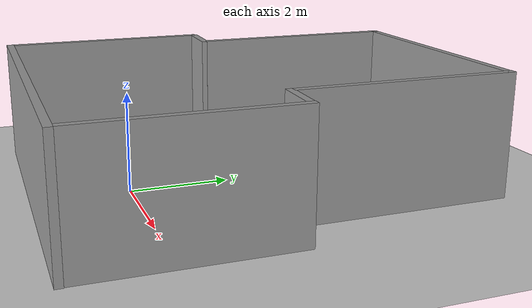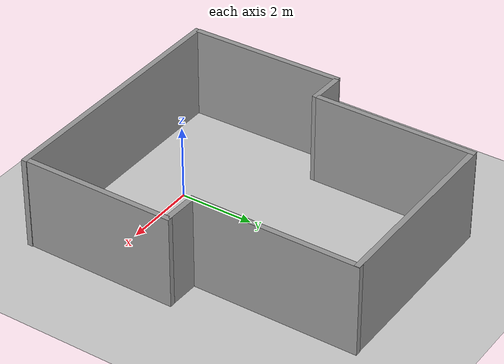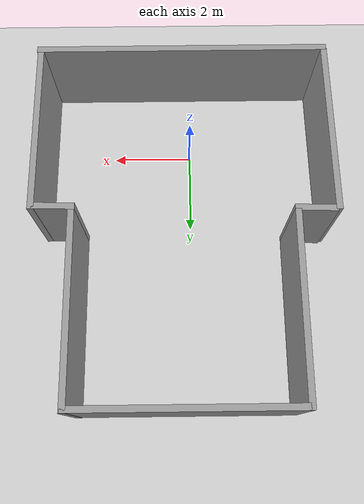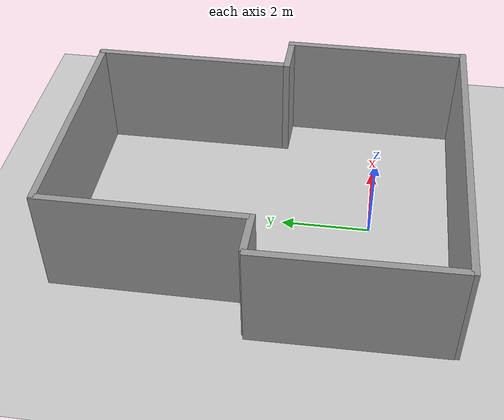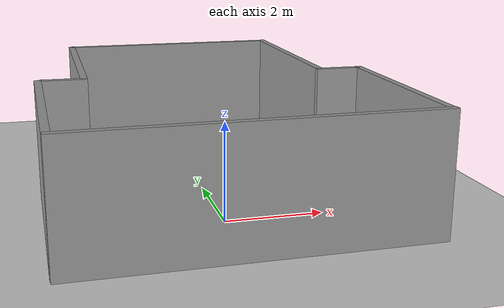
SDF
<sdf version="1.7">
 <world name="default">
  <light name="sun" type="directional">
   <pose>0 0 10 0 -0 0</pose>
   <diffuse>0.8 0.8 0.8 1</diffuse>
   <specular>0.2 0.2 0.2 1</specular>
   <attenuation>
    <range>1000</range>
    <constant>0.9</constant>
    <linear>0.01</linear>
    <quadratic>0.001</quadratic>
   </attenuation>
   <direction>-0.5 0.1 -0.9</direction>
   <spot><inner_angle>0</inner_angle><outer_angle>0</outer_angle><falloff>0</falloff></spot>
  </light>
  <model name="ground_plane">
   <static>1</static>
   <link name="link">
    <collision name="collision">
     <geometry><plane><normal>0 0 1</normal><size>100 100</size></plane></geometry>
     <surface>
      <contact><collide_bitmask>65535</collide_bitmask></contact>
      <friction><ode><mu>100</mu><mu2>50</mu2></ode></friction>
     </surface>
    </collision>
    <visual name="visual">
     <cast_shadows>0</cast_shadows>
     <geometry><plane><normal>0 0 1</normal><size>100 100</size></plane></geometry>
     <material>
      <script><uri>file://media/materials/scripts/gazebo.material</uri><name>Gazebo/Grey</name></script>
     </material>
    </visual>
   </link>
  </model>
  <gravity>0 0 -9.8</gravity>
  <magnetic_field>6e-06 2.3e-05 -4.2e-05</magnetic_field>
  <atmosphere type="adiabatic"/>
  <physics type="ode">
   <max_step_size>0.001</max_step_size>
   <real_time_factor>1</real_time_factor>
   <real_time_update_rate>1000</real_time_update_rate>
  </physics>
  <scene><ambient>0.4 0.4 0.4 1</ambient><background>0.7 0.7 0.7 1</background><shadows>1</shadows></scene>
  <spherical_coordinates>
   <surface_model>EARTH_WGS84</surface_model>
   <latitude_deg>0</latitude_deg>
   <longitude_deg>0</longitude_deg>
   <elevation>0</elevation>
   <heading_deg>0</heading_deg>
  </spherical_coordinates>
  <model name="funnel_shaped_room_0">
   <link name="Wall_1">
    <pose>0.091563 -2.92893 0 0 -0 0</pose>
    <inertial>
     <inertia><ixx>0</ixx><ixy>0</ixy><ixz>0</ixz><iyy>0</iyy><iyz>0</iyz><izz>0</izz></inertia>
     <mass>0</mass>
    </inertial>
    <visual name="Wall_1_Visual">
     <pose>0 0 1.25 0 -0 0</pose>
     <geometry><box><size>7.11378 0.15 2.5</size></box></geometry>
     <material>
      <script><uri>file://media/materials/scripts/gazebo.material</uri><name>Gazebo/Grey</name></script>
      <ambient>1 1 1 1</ambient>
      <shader type="pixel"/>
     </material>
     <meta><layer>0</layer></meta>
    </visual>
    <collision name="Wall_1_Collision">
     <pose>0 0 1.25 0 -0 0</pose>
     <geometry><box><size>7.11378 0.15 2.5</size></box></geometry>
     <surface>
      <friction>
       <ode><mu>1</mu><mu2>1</mu2><fdir1>0 0 0</fdir1><slip1>0</slip1><slip2>0</slip2></ode>
       <torsional>
        <coefficient>1</coefficient>
        <patch_radius>0</patch_radius>
        <surface_radius>0</surface_radius>
        <use_patch_radius>1</use_patch_radius>
        <ode><slip>0</slip></ode>
       </torsional>
      </friction>
      <bounce><restitution_coefficient>0</restitution_coefficient><threshold>1e+06</threshold></bounce>
      <contact>
       <collide_without_contact>0</collide_without_contact>
       <collide_without_contact_bitmask>1</collide_without_contact_bitmask>
       <collide_bitmask>1</collide_bitmask>
       <ode>
        <soft_cfm>0</soft_cfm>
        <soft_erp>0.2</soft_erp>
        <kp>1e+13</kp>
        <kd>1</kd>
        <max_vel>0.01</max_vel>
        <min_depth>0</min_depth>
       </ode>
       <bullet>
        <split_impulse>1</split_impulse>
        <split_impulse_penetration_threshold>-0.01</split_impulse_penetration_threshold>
        <soft_cfm>0</soft_cfm>
        <soft_erp>0.2</soft_erp>
        <kp>1e+13</kp>
        <kd>1</kd>
       </bullet>
      </contact>
     </surface>
    </collision>
   </link>
   <link name="Wall_3">
    <pose>2.64577 3.48532 0 0 -0 1.5708</pose>
    <inertial>
     <inertia><ixx>0</ixx><ixy>0</ixy><ixz>0</ixz><iyy>0</iyy><iyz>0</iyz><izz>0</izz></inertia>
     <mass>0</mass>
    </inertial>
    <visual name="Wall_3_Visual">
     <pose>0 0 1.25 0 -0 0</pose>
     <geometry><box><size>4.48059 0.15 2.5</size></box></geometry>
     <material>
      <script><uri>file://media/materials/scripts/gazebo.material</uri><name>Gazebo/Grey</name></script>
      <ambient>1 1 1 1</ambient>
      <shader type="pixel"/>
     </material>
     <meta><layer>0</layer></meta>
    </visual>
    <collision name="Wall_3_Collision">
     <pose>0 0 1.25 0 -0 0</pose>
     <geometry><box><size>4.48059 0.15 2.5</size></box></geometry>
     <surface>
      <friction>
       <ode><mu>1</mu><mu2>1</mu2><fdir1>0 0 0</fdir1><slip1>0</slip1><slip2>0</slip2></ode>
       <torsional>
        <coefficient>1</coefficient>
        <patch_radius>0</patch_radius>
        <surface_radius>0</surface_radius>
        <use_patch_radius>1</use_patch_radius>
        <ode><slip>0</slip></ode>
       </torsional>
      </friction>
      <bounce><restitution_coefficient>0</restitution_coefficient><threshold>1e+06</threshold></bounce>
      <contact>
       <collide_without_contact>0</collide_without_contact>
       <collide_without_contact_bitmask>1</collide_without_contact_bitmask>
       <collide_bitmask>1</collide_bitmask>
       <ode>
        <soft_cfm>0</soft_cfm>
        <soft_erp>0.2</soft_erp>
        <kp>1e+13</kp>
        <kd>1</kd>
        <max_vel>0.01</max_vel>
        <min_depth>0</min_depth>
       </ode>
       <bullet>
        <split_impulse>1</split_impulse>
        <split_impulse_penetration_threshold>-0.01</split_impulse_penetration_threshold>
        <soft_cfm>0</soft_cfm>
        <soft_erp>0.2</soft_erp>
        <kp>1e+13</kp>
        <kd>1</kd>
       </bullet>
      </contact>
     </surface>
    </collision>
   </link>
   <link name="Wall_3_clone">
    <pose>3.56406 -0.806127 0 0 -0 1.56617</pose>
    <inertial>
     <inertia><ixx>0</ixx><ixy>0</ixy><ixz>0</ixz><iyy>0</iyy><iyz>0</iyz><izz>0</izz></inertia>
     <mass>0</mass>
    </inertial>
    <visual name="Wall_3_Visual">
     <pose>0 0 1.25 0 -0 0</pose>
     <geometry><box><size>4.11554 0.15 2.5</size></box></geometry>
     <material>
      <script><uri>file://media/materials/scripts/gazebo.material</uri><name>Gazebo/Grey</name></script>
      <ambient>1 1 1 1</ambient>
      <shader type="pixel"/>
     </material>
     <meta><layer>0</layer></meta>
    </visual>
    <collision name="Wall_3_Collision">
     <pose>0 0 1.25 0 -0 0</pose>
     <geometry><box><size>4.11554 0.15 2.5</size></box></geometry>
     <surface>
      <friction>
       <ode><mu>1</mu><mu2>1</mu2><fdir1>0 0 0</fdir1><slip1>0</slip1><slip2>0</slip2></ode>
       <torsional>
        <coefficient>1</coefficient>
        <patch_radius>0</patch_radius>
        <surface_radius>0</surface_radius>
        <use_patch_radius>1</use_patch_radius>
        <ode><slip>0</slip></ode>
       </torsional>
      </friction>
      <bounce><restitution_coefficient>0</restitution_coefficient><threshold>1e+06</threshold></bounce>
      <contact>
       <collide_without_contact>0</collide_without_contact>
       <collide_without_contact_bitmask>1</collide_without_contact_bitmask>
       <collide_bitmask>1</collide_bitmask>
       <ode>
        <soft_cfm>0</soft_cfm>
        <soft_erp>0.2</soft_erp>
        <kp>1e+13</kp>
        <kd>1</kd>
        <max_vel>0.01</max_vel>
        <min_depth>0</min_depth>
       </ode>
       <bullet>
        <split_impulse>1</split_impulse>
        <split_impulse_penetration_threshold>-0.01</split_impulse_penetration_threshold>
        <soft_cfm>0</soft_cfm>
        <soft_erp>0.2</soft_erp>
        <kp>1e+13</kp>
        <kd>1</kd>
       </bullet>
      </contact>
     </surface>
    </collision>
   </link>
   <link name="Wall_6">
    <pose>-2.51592 3.51045 0 0 -0 1.5708</pose>
    <inertial>
     <inertia><ixx>0</ixx><ixy>0</ixy><ixz>0</ixz><iyy>0</iyy><iyz>0</iyz><izz>0</izz></inertia>
     <mass>0</mass>
    </inertial>
    <visual name="Wall_6_Visual">
     <pose>0 0 1.25 0 -0 0</pose>
     <geometry><box><size>4.40079 0.15 2.5</size></box></geometry>
     <material>
      <script><uri>file://media/materials/scripts/gazebo.material</uri><name>Gazebo/Grey</name></script>
      <ambient>1 1 1 1</ambient>
      <shader type="pixel"/>
     </material>
     <meta><layer>0</layer></meta>
    </visual>
    <collision name="Wall_6_Collision">
     <pose>0 0 1.25 0 -0 0</pose>
     <geometry><box><size>4.40079 0.15 2.5</size></box></geometry>
     <surface>
      <friction>
       <ode><mu>1</mu><mu2>1</mu2><fdir1>0 0 0</fdir1><slip1>0</slip1><slip2>0</slip2></ode>
       <torsional>
        <coefficient>1</coefficient>
        <patch_radius>0</patch_radius>
        <surface_radius>0</surface_radius>
        <use_patch_radius>1</use_patch_radius>
        <ode><slip>0</slip></ode>
       </torsional>
      </friction>
      <bounce><restitution_coefficient>0</restitution_coefficient><threshold>1e+06</threshold></bounce>
      <contact>
       <collide_without_contact>0</collide_without_contact>
       <collide_without_contact_bitmask>1</collide_without_contact_bitmask>
       <collide_bitmask>1</collide_bitmask>
       <ode>
        <soft_cfm>0</soft_cfm>
        <soft_erp>0.2</soft_erp>
        <kp>1e+13</kp>
        <kd>1</kd>
        <max_vel>0.01</max_vel>
        <min_depth>0</min_depth>
       </ode>
       <bullet>
        <split_impulse>1</split_impulse>
        <split_impulse_penetration_threshold>-0.01</split_impulse_penetration_threshold>
        <soft_cfm>0</soft_cfm>
        <soft_erp>0.2</soft_erp>
        <kp>1e+13</kp>
        <kd>1</kd>
       </bullet>
      </contact>
     </surface>
    </collision>
   </link>
   <link name="Wall_6_clone">
    <pose>-3.42841 -0.784437 0 0 -0 1.58334</pose>
    <inertial>
     <inertia><ixx>0</ixx><ixy>0</ixy><ixz>0</ixz><iyy>0</iyy><iyz>0</iyz><izz>0</izz></inertia>
     <mass>0</mass>
    </inertial>
    <visual name="Wall_6_Visual">
     <pose>0 0 1.25 0 -0 0</pose>
     <geometry><box><size>4.23243 0.15 2.5</size></box></geometry>
     <material>
      <script><uri>file://media/materials/scripts/gazebo.material</uri><name>Gazebo/Grey</name></script>
      <ambient>1 1 1 1</ambient>
      <shader type="pixel"/>
     </material>
     <meta><layer>0</layer></meta>
    </visual>
    <collision name="Wall_6_Collision">
     <pose>0 0 1.25 0 -0 0</pose>
     <geometry><box><size>4.23243 0.15 2.5</size></box></geometry>
     <surface>
      <friction>
       <ode><mu>1</mu><mu2>1</mu2><fdir1>0 0 0</fdir1><slip1>0</slip1><slip2>0</slip2></ode>
       <torsional>
        <coefficient>1</coefficient>
        <patch_radius>0</patch_radius>
        <surface_radius>0</surface_radius>
        <use_patch_radius>1</use_patch_radius>
        <ode><slip>0</slip></ode>
       </torsional>
      </friction>
      <bounce><restitution_coefficient>0</restitution_coefficient><threshold>1e+06</threshold></bounce>
      <contact>
       <collide_without_contact>0</collide_without_contact>
       <collide_without_contact_bitmask>1</collide_without_contact_bitmask>
       <collide_bitmask>1</collide_bitmask>
       <ode>
        <soft_cfm>0</soft_cfm>
        <soft_erp>0.2</soft_erp>
        <kp>1e+13</kp>
        <kd>1</kd>
        <max_vel>0.01</max_vel>
        <min_depth>0</min_depth>
       </ode>
       <bullet>
        <split_impulse>1</split_impulse>
        <split_impulse_penetration_threshold>-0.01</split_impulse_penetration_threshold>
        <soft_cfm>0</soft_cfm>
        <soft_erp>0.2</soft_erp>
        <kp>1e+13</kp>
        <kd>1</kd>
       </bullet>
      </contact>
     </surface>
    </collision>
   </link>
   <link name="Wall_6_clone_0">
    <pose>-2.93735 1.28494 0 0 0 -0.025129</pose>
    <inertial>
     <inertia><ixx>0</ixx><ixy>0</ixy><ixz>0</ixz><iyy>0</iyy><iyz>0</iyz><izz>0</izz></inertia>
     <mass>0</mass>
    </inertial>
    <visual name="Wall_6_Visual">
     <pose>0 0 1.25 0 -0 0</pose>
     <geometry><box><size>0.989262 0.15 2.5</size></box></geometry>
     <material>
      <script><uri>file://media/materials/scripts/gazebo.material</uri><name>Gazebo/Grey</name></script>
      <ambient>1 1 1 1</ambient>
      <shader type="pixel"/>
     </material>
     <meta><layer>0</layer></meta>
    </visual>
    <collision name="Wall_6_Collision">
     <pose>0 0 1.25 0 -0 0</pose>
     <geometry><box><size>0.989262 0.15 2.5</size></box></geometry>
     <surface>
      <friction>
       <ode><mu>1</mu><mu2>1</mu2><fdir1>0 0 0</fdir1><slip1>0</slip1><slip2>0</slip2></ode>
       <torsional>
        <coefficient>1</coefficient>
        <patch_radius>0</patch_radius>
        <surface_radius>0</surface_radius>
        <use_patch_radius>1</use_patch_radius>
        <ode><slip>0</slip></ode>
       </torsional>
      </friction>
      <bounce><restitution_coefficient>0</restitution_coefficient><threshold>1e+06</threshold></bounce>
      <contact>
       <collide_without_contact>0</collide_without_contact>
       <collide_without_contact_bitmask>1</collide_without_contact_bitmask>
       <collide_bitmask>1</collide_bitmask>
       <ode>
        <soft_cfm>0</soft_cfm>
        <soft_erp>0.2</soft_erp>
        <kp>1e+13</kp>
        <kd>1</kd>
        <max_vel>0.01</max_vel>
        <min_depth>0</min_depth>
       </ode>
       <bullet>
        <split_impulse>1</split_impulse>
        <split_impulse_penetration_threshold>-0.01</split_impulse_penetration_threshold>
        <soft_cfm>0</soft_cfm>
        <soft_erp>0.2</soft_erp>
        <kp>1e+13</kp>
        <kd>1</kd>
       </bullet>
      </contact>
     </surface>
    </collision>
   </link>
   <link name="Wall_6_clone_0_clone">
    <pose>3.06287 1.18275 0 0 0 -0.025129</pose>
    <inertial>
     <inertia><ixx>0</ixx><ixy>0</ixy><ixz>0</ixz><iyy>0</iyy><iyz>0</iyz><izz>0</izz></inertia>
     <mass>0</mass>
    </inertial>
    <visual name="Wall_6_Visual">
     <pose>0 0 1.25 0 -0 0</pose>
     <geometry><box><size>0.989262 0.15 2.5</size></box></geometry>
     <material>
      <script><uri>file://media/materials/scripts/gazebo.material</uri><name>Gazebo/Grey</name></script>
      <ambient>1 1 1 1</ambient>
      <shader type="pixel"/>
     </material>
     <meta><layer>0</layer></meta>
    </visual>
    <collision name="Wall_6_Collision">
     <pose>0 0 1.25 0 -0 0</pose>
     <geometry><box><size>0.989262 0.15 2.5</size></box></geometry>
     <surface>
      <friction>
       <ode><mu>1</mu><mu2>1</mu2><fdir1>0 0 0</fdir1><slip1>0</slip1><slip2>0</slip2></ode>
       <torsional>
        <coefficient>1</coefficient>
        <patch_radius>0</patch_radius>
        <surface_radius>0</surface_radius>
        <use_patch_radius>1</use_patch_radius>
        <ode><slip>0</slip></ode>
       </torsional>
      </friction>
      <bounce><restitution_coefficient>0</restitution_coefficient><threshold>1e+06</threshold></bounce>
      <contact>
       <collide_without_contact>0</collide_without_contact>
       <collide_without_contact_bitmask>1</collide_without_contact_bitmask>
       <collide_bitmask>1</collide_bitmask>
       <ode>
        <soft_cfm>0</soft_cfm>
        <soft_erp>0.2</soft_erp>
        <kp>1e+13</kp>
        <kd>1</kd>
        <max_vel>0.01</max_vel>
        <min_depth>0</min_depth>
       </ode>
       <bullet>
        <split_impulse>1</split_impulse>
        <split_impulse_penetration_threshold>-0.01</split_impulse_penetration_threshold>
        <soft_cfm>0</soft_cfm>
        <soft_erp>0.2</soft_erp>
        <kp>1e+13</kp>
        <kd>1</kd>
       </bullet>
      </contact>
     </surface>
    </collision>
   </link>
   <link name="Wall_7">
    <pose>0.07384 5.64053 0 0 -0 0</pose>
    <inertial>
     <inertia><ixx>0</ixx><ixy>0</ixy><ixz>0</ixz><iyy>0</iyy><iyz>0</iyz><izz>0</izz></inertia>
     <mass>0</mass>
    </inertial>
    <visual name="Wall_7_Visual">
     <pose>0 0 1.25 0 -0 0</pose>
     <geometry><box><size>5.27102 0.15 2.5</size></box></geometry>
     <material>
      <script><uri>file://media/materials/scripts/gazebo.material</uri><name>Gazebo/Grey</name></script>
      <ambient>1 1 1 1</ambient>
      <shader type="pixel"/>
     </material>
     <meta><layer>0</layer></meta>
    </visual>
    <collision name="Wall_7_Collision">
     <pose>0 0 1.25 0 -0 0</pose>
     <geometry><box><size>5.27102 0.15 2.5</size></box></geometry>
     <surface>
      <friction>
       <ode><mu>1</mu><mu2>1</mu2><fdir1>0 0 0</fdir1><slip1>0</slip1><slip2>0</slip2></ode>
       <torsional>
        <coefficient>1</coefficient>
        <patch_radius>0</patch_radius>
        <surface_radius>0</surface_radius>
        <use_patch_radius>1</use_patch_radius>
        <ode><slip>0</slip></ode>
       </torsional>
      </friction>
      <bounce><restitution_coefficient>0</restitution_coefficient><threshold>1e+06</threshold></bounce>
      <contact>
       <collide_without_contact>0</collide_without_contact>
       <collide_without_contact_bitmask>1</collide_without_contact_bitmask>
       <collide_bitmask>1</collide_bitmask>
       <ode>
        <soft_cfm>0</soft_cfm>
        <soft_erp>0.2</soft_erp>
        <kp>1e+13</kp>
        <kd>1</kd>
        <max_vel>0.01</max_vel>
        <min_depth>0</min_depth>
       </ode>
       <bullet>
        <split_impulse>1</split_impulse>
        <split_impulse_penetration_threshold>-0.01</split_impulse_penetration_threshold>
        <soft_cfm>0</soft_cfm>
        <soft_erp>0.2</soft_erp>
        <kp>1e+13</kp>
        <kd>1</kd>
       </bullet>
      </contact>
     </surface>
    </collision>
   </link>
   <static>1</static>
   <pose>0.091072 1.04594 0 0 -0 0</pose>
  </model>
 </world>
</sdf>
